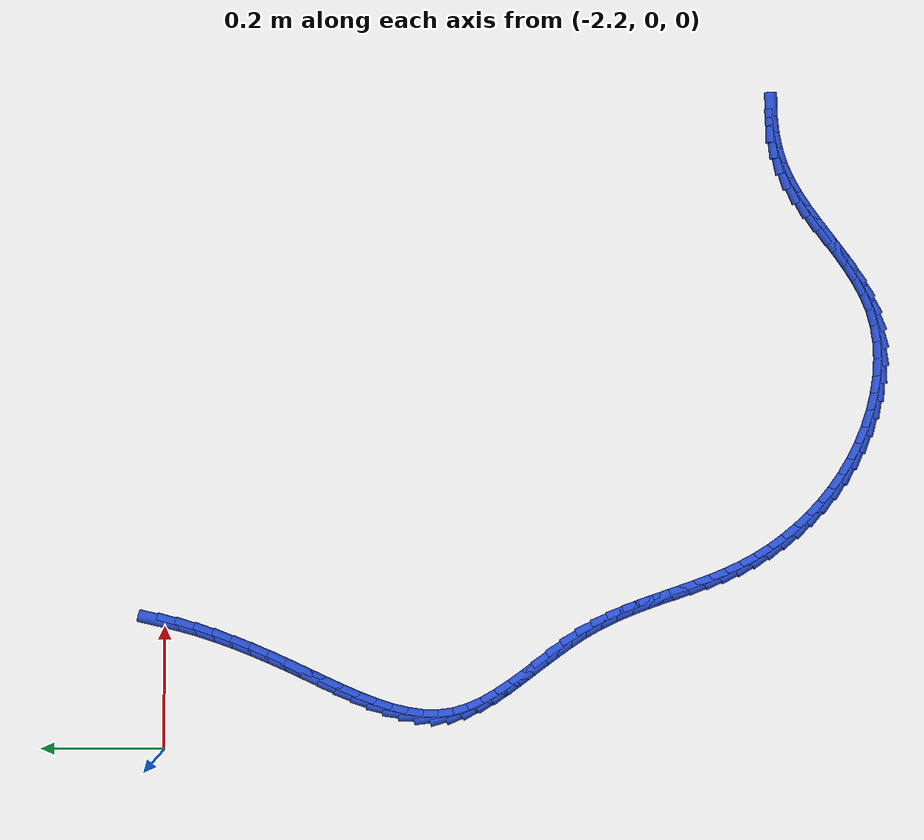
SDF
<sdf version="1.6">
 <world name="default">
  <model name="ground_plane">
   <static>1</static>
   <link name="link">
    <collision name="collision">
     <geometry><plane><normal>0 0 1</normal><size>100 100</size></plane></geometry>
     <surface><friction><ode><mu>100</mu><mu2>50</mu2></ode></friction></surface>
    </collision>
    <visual name="visual">
     <cast_shadows>0</cast_shadows>
     <geometry><plane><normal>0 0 1</normal><size>100 100</size></plane></geometry>
     <material>
      <script><uri>file://media/materials/scripts/gazebo.material</uri><name>Gazebo/WhiteGlow</name></script>
     </material>
    </visual>
   </link>
  </model>
  <model name="line">
   <link name="link_137">
    <pose>-1.9910492073272932 0.001707632671373513 0.01 0 1.57 1.3460165663858163</pose>
    <collision name="collision">
     <geometry><cylinder><radius>0.01</radius><length>0.08</length></cylinder></geometry>
    </collision>
    <visual name="visual">
     <material>
      <script><name>Gazebo/Blue</name><uri>file://media/materials/scripts/gazebo.material</uri></script>
     </material>
     <geometry><cylinder><radius>0.01</radius><length>0.08</length></cylinder></geometry>
    </visual>
   </link>
   <link name="link_138">
    <pose>-1.9976406174142094 -0.02712068325228265 0.01 0 1.57 1.2992451563873848</pose>
    <collision name="collision">
     <geometry><cylinder><radius>0.01</radius><length>0.08</length></cylinder></geometry>
    </collision>
    <visual name="visual">
     <material>
      <script><name>Gazebo/Blue</name><uri>file://media/materials/scripts/gazebo.material</uri></script>
     </material>
     <geometry><cylinder><radius>0.01</radius><length>0.08</length></cylinder></geometry>
    </visual>
   </link>
   <link name="link_139">
    <pose>-2.0057549440093454 -0.05626395263081665 0.01 0 1.57 1.2594805202922028</pose>
    <collision name="collision">
     <geometry><cylinder><radius>0.01</radius><length>0.08</length></cylinder></geometry>
    </collision>
    <visual name="visual">
     <material>
      <script><name>Gazebo/Blue</name><uri>file://media/materials/scripts/gazebo.material</uri></script>
     </material>
     <geometry><cylinder><radius>0.01</radius><length>0.08</length></cylinder></geometry>
    </visual>
   </link>
   <link name="link_140">
    <pose>-2.015196398217918 -0.08560538264032239 0.01 0 1.57 1.2258250034168063</pose>
    <collision name="collision">
     <geometry><cylinder><radius>0.01</radius><length>0.08</length></cylinder></geometry>
    </collision>
    <visual name="visual">
     <material>
      <script><name>Gazebo/Blue</name><uri>file://media/materials/scripts/gazebo.material</uri></script>
     </material>
     <geometry><cylinder><radius>0.01</radius><length>0.08</length></cylinder></geometry>
    </visual>
   </link>
   <link name="link_141">
    <pose>-2.025769191145145 -0.1150281804568939 0.01 0 1.57 1.1975449332592532</pose>
    <collision name="collision">
     <geometry><cylinder><radius>0.01</radius><length>0.08</length></cylinder></geometry>
    </collision>
    <visual name="visual">
     <material>
      <script><name>Gazebo/Blue</name><uri>file://media/materials/scripts/gazebo.material</uri></script>
     </material>
     <geometry><cylinder><radius>0.01</radius><length>0.08</length></cylinder></geometry>
    </visual>
   </link>
   <link name="link_142">
    <pose>-2.037277533896243 -0.14441555325662253 0.01 0 1.57 1.1740601900306746</pose>
    <collision name="collision">
     <geometry><cylinder><radius>0.01</radius><length>0.08</length></cylinder></geometry>
    </collision>
    <visual name="visual">
     <material>
      <script><name>Gazebo/Blue</name><uri>file://media/materials/scripts/gazebo.material</uri></script>
     </material>
     <geometry><cylinder><radius>0.01</radius><length>0.08</length></cylinder></geometry>
    </visual>
   </link>
   <link name="link_143">
    <pose>-2.0495256375764295 -0.1736507082156031 0.01 0 1.57 1.1549316646391445</pose>
    <collision name="collision">
     <geometry><cylinder><radius>0.01</radius><length>0.08</length></cylinder></geometry>
    </collision>
    <visual name="visual">
     <material>
      <script><name>Gazebo/Blue</name><uri>file://media/materials/scripts/gazebo.material</uri></script>
     </material>
     <geometry><cylinder><radius>0.01</radius><length>0.08</length></cylinder></geometry>
    </visual>
   </link>
   <link name="link_144">
    <pose>-2.0623177132909207 -0.20261685250992706 0.01 0 1.57 1.140403946616033</pose>
    <collision name="collision">
     <geometry><cylinder><radius>0.01</radius><length>0.08</length></cylinder></geometry>
    </collision>
    <visual name="visual">
     <material>
      <script><name>Gazebo/Blue</name><uri>file://media/materials/scripts/gazebo.material</uri></script>
     </material>
     <geometry><cylinder><radius>0.01</radius><length>0.08</length></cylinder></geometry>
    </visual>
   </link>
   <link name="link_145">
    <pose>-2.0754418590196364 -0.2312037823977666 0.01 0 1.57 1.1356188228291546</pose>
    <collision name="collision">
     <geometry><cylinder><radius>0.01</radius><length>0.08</length></cylinder></geometry>
    </collision>
    <visual name="visual">
     <material>
      <script><name>Gazebo/Blue</name><uri>file://media/materials/scripts/gazebo.material</uri></script>
     </material>
     <geometry><cylinder><radius>0.01</radius><length>0.08</length></cylinder></geometry>
    </visual>
   </link>
   <link name="link_146">
    <pose>-2.0885334892696417 -0.2593637304378773 0.01 0 1.57 1.1438557305493362</pose>
    <collision name="collision">
     <geometry><cylinder><radius>0.01</radius><length>0.08</length></cylinder></geometry>
    </collision>
    <visual name="visual">
     <material>
      <script><name>Gazebo/Blue</name><uri>file://media/materials/scripts/gazebo.material</uri></script>
     </material>
     <geometry><cylinder><radius>0.01</radius><length>0.08</length></cylinder></geometry>
    </visual>
   </link>
   <link name="link_147">
    <pose>-2.101143798731375 -0.28708336889416836 0.01 0 1.57 1.1660992037454772</pose>
    <collision name="collision">
     <geometry><cylinder><radius>0.01</radius><length>0.08</length></cylinder></geometry>
    </collision>
    <visual name="visual">
     <material>
      <script><name>Gazebo/Blue</name><uri>file://media/materials/scripts/gazebo.material</uri></script>
     </material>
     <geometry><cylinder><radius>0.01</radius><length>0.08</length></cylinder></geometry>
    </visual>
   </link>
   <link name="link_148">
    <pose>-2.112823100214544 -0.3143497306548437 0.01 0 1.57 1.2039193404138193</pose>
    <collision name="collision">
     <geometry><cylinder><radius>0.01</radius><length>0.08</length></cylinder></geometry>
    </collision>
    <visual name="visual">
     <material>
      <script><name>Gazebo/Blue</name><uri>file://media/materials/scripts/gazebo.material</uri></script>
     </material>
     <geometry><cylinder><radius>0.01</radius><length>0.08</length></cylinder></geometry>
    </visual>
   </link>
   <link name="link_149">
    <pose>-2.12312170652886 -0.34114984860811054 0.01 0 1.57 1.2595249183079558</pose>
    <collision name="collision">
     <geometry><cylinder><radius>0.01</radius><length>0.08</length></cylinder></geometry>
    </collision>
    <visual name="visual">
     <material>
      <script><name>Gazebo/Blue</name><uri>file://media/materials/scripts/gazebo.material</uri></script>
     </material>
     <geometry><cylinder><radius>0.01</radius><length>0.08</length></cylinder></geometry>
    </visual>
   </link>
   <link name="link_150">
    <pose>-2.131589930484031 -0.3674707556421727 0.01 0 1.57 1.335644572963151</pose>
    <collision name="collision">
     <geometry><cylinder><radius>0.01</radius><length>0.08</length></cylinder></geometry>
    </collision>
    <visual name="visual">
     <material>
      <script><name>Gazebo/Blue</name><uri>file://media/materials/scripts/gazebo.material</uri></script>
     </material>
     <geometry><cylinder><radius>0.01</radius><length>0.08</length></cylinder></geometry>
    </visual>
   </link>
   <link name="link_151">
    <pose>-2.1377780848897676 -0.3932994846452367 0.01 0 1.57 1.4350677348049512</pose>
    <collision name="collision">
     <geometry><cylinder><radius>0.01</radius><length>0.08</length></cylinder></geometry>
    </collision>
    <visual name="visual">
     <material>
      <script><name>Gazebo/Blue</name><uri>file://media/materials/scripts/gazebo.material</uri></script>
     </material>
     <geometry><cylinder><radius>0.01</radius><length>0.08</length></cylinder></geometry>
    </visual>
   </link>
   <link name="link_152">
    <pose>-2.1412364825557777 -0.4186230685055087 0.01 0 1.57 1.559551147422717</pose>
    <collision name="collision">
     <geometry><cylinder><radius>0.01</radius><length>0.08</length></cylinder></geometry>
    </collision>
    <visual name="visual">
     <material>
      <script><name>Gazebo/Blue</name><uri>file://media/materials/scripts/gazebo.material</uri></script>
     </material>
     <geometry><cylinder><radius>0.01</radius><length>0.08</length></cylinder></geometry>
    </visual>
   </link>
   <link name="link_153">
    <pose>-2.1415154362917717 -0.4434285401111927 0.01 0 1.57 -1.4336508128707455</pose>
    <collision name="collision">
     <geometry><cylinder><radius>0.01</radius><length>0.08</length></cylinder></geometry>
    </collision>
    <visual name="visual">
     <material>
      <script><name>Gazebo/Blue</name><uri>file://media/materials/scripts/gazebo.material</uri></script>
     </material>
     <geometry><cylinder><radius>0.01</radius><length>0.08</length></cylinder></geometry>
    </visual>
   </link>
   <link name="link_154">
    <pose>-2.1381652812880683 -0.46770293515979816 0.01 0 1.57 -1.2758770240311776</pose>
    <collision name="collision">
     <geometry><cylinder><radius>0.01</radius><length>0.08</length></cylinder></geometry>
    </collision>
    <visual name="visual">
     <material>
      <script><name>Gazebo/Blue</name><uri>file://media/materials/scripts/gazebo.material</uri></script>
     </material>
     <geometry><cylinder><radius>0.01</radius><length>0.08</length></cylinder></geometry>
    </visual>
   </link>
   <link name="link_155">
    <pose>-2.1309484330814725 -0.4914599105094461 0.01 0 1.57 -1.1449351415886124</pose>
    <collision name="collision">
     <geometry><cylinder><radius>0.01</radius><length>0.08</length></cylinder></geometry>
    </collision>
    <visual name="visual">
     <material>
      <script><name>Gazebo/Blue</name><uri>file://media/materials/scripts/gazebo.material</uri></script>
     </material>
     <geometry><cylinder><radius>0.01</radius><length>0.08</length></cylinder></geometry>
    </visual>
   </link>
   <link name="link_156">
    <pose>-2.120358641882172 -0.5148049230276712 0.01 0 1.57 -1.0472380654074145</pose>
    <collision name="collision">
     <geometry><cylinder><radius>0.01</radius><length>0.08</length></cylinder></geometry>
    </collision>
    <visual name="visual">
     <material>
      <script><name>Gazebo/Blue</name><uri>file://media/materials/scripts/gazebo.material</uri></script>
     </material>
     <geometry><cylinder><radius>0.01</radius><length>0.08</length></cylinder></geometry>
    </visual>
   </link>
   <link name="link_157">
    <pose>-2.107047183401426 -0.5378632028034962 0.01 0 1.57 -0.9792544555781986</pose>
    <collision name="collision">
     <geometry><cylinder><radius>0.01</radius><length>0.08</length></cylinder></geometry>
    </collision>
    <visual name="visual">
     <material>
      <script><name>Gazebo/Blue</name><uri>file://media/materials/scripts/gazebo.material</uri></script>
     </material>
     <geometry><cylinder><radius>0.01</radius><length>0.08</length></cylinder></geometry>
    </visual>
   </link>
   <link name="link_158">
    <pose>-2.0916653333504946 -0.5607599799259465 0.01 0 1.57 -0.9370072807147753</pose>
    <collision name="collision">
     <geometry><cylinder><radius>0.01</radius><length>0.08</length></cylinder></geometry>
    </collision>
    <visual name="visual">
     <material>
      <script><name>Gazebo/Blue</name><uri>file://media/materials/scripts/gazebo.material</uri></script>
     </material>
     <geometry><cylinder><radius>0.01</radius><length>0.08</length></cylinder></geometry>
    </visual>
   </link>
   <link name="link_159">
    <pose>-2.0748643674406373 -0.5836204844840452 0.01 0 1.57 -0.9174215191236696</pose>
    <collision name="collision">
     <geometry><cylinder><radius>0.01</radius><length>0.08</length></cylinder></geometry>
    </collision>
    <visual name="visual">
     <material>
      <script><name>Gazebo/Blue</name><uri>file://media/materials/scripts/gazebo.material</uri></script>
     </material>
     <geometry><cylinder><radius>0.01</radius><length>0.08</length></cylinder></geometry>
    </visual>
   </link>
   <link name="link_160">
    <pose>-2.057295561383113 -0.606569946566817 0.01 0 1.57 -0.9187131296818312</pose>
    <collision name="collision">
     <geometry><cylinder><radius>0.01</radius><length>0.08</length></cylinder></geometry>
    </collision>
    <visual name="visual">
     <material>
      <script><name>Gazebo/Blue</name><uri>file://media/materials/scripts/gazebo.material</uri></script>
     </material>
     <geometry><cylinder><radius>0.01</radius><length>0.08</length></cylinder></geometry>
    </visual>
   </link>
   <link name="link_161">
    <pose>-2.0396101908891806 -0.6297335962632864 0.01 0 1.57 -0.9404012299184373</pose>
    <collision name="collision">
     <geometry><cylinder><radius>0.01</radius><length>0.08</length></cylinder></geometry>
    </collision>
    <visual name="visual">
     <material>
      <script><name>Gazebo/Blue</name><uri>file://media/materials/scripts/gazebo.material</uri></script>
     </material>
     <geometry><cylinder><radius>0.01</radius><length>0.08</length></cylinder></geometry>
    </visual>
   </link>
   <link name="link_162">
    <pose>-2.0224595316701004 -0.6532366636624767 0.01 0 1.57 -0.9831925741344743</pose>
    <collision name="collision">
     <geometry><cylinder><radius>0.01</radius><length>0.08</length></cylinder></geometry>
    </collision>
    <visual name="visual">
     <material>
      <script><name>Gazebo/Blue</name><uri>file://media/materials/scripts/gazebo.material</uri></script>
     </material>
     <geometry><cylinder><radius>0.01</radius><length>0.08</length></cylinder></geometry>
    </visual>
   </link>
   <link name="link_163">
    <pose>-2.0064948594371304 -0.677204378853413 0.01 0 1.57 -1.0463529732244015</pose>
    <collision name="collision">
     <geometry><cylinder><radius>0.01</radius><length>0.08</length></cylinder></geometry>
    </collision>
    <visual name="visual">
     <material>
      <script><name>Gazebo/Blue</name><uri>file://media/materials/scripts/gazebo.material</uri></script>
     </material>
     <geometry><cylinder><radius>0.01</radius><length>0.08</length></cylinder></geometry>
    </visual>
   </link>
   <link name="link_164">
    <pose>-1.9922988467832232 -0.7017447055189716 0.01 0 1.57 -1.109429088060677</pose>
    <collision name="collision">
     <geometry><cylinder><radius>0.01</radius><length>0.08</length></cylinder></geometry>
    </collision>
    <visual name="visual">
     <material>
      <script><name>Gazebo/Blue</name><uri>file://media/materials/scripts/gazebo.material</uri></script>
     </material>
     <geometry><cylinder><radius>0.01</radius><length>0.08</length></cylinder></geometry>
    </visual>
   </link>
   <link name="link_165">
    <pose>-1.9798373812781482 -0.7268103715309208 0.01 0 1.57 -1.1601120024649205</pose>
    <collision name="collision">
     <geometry><cylinder><radius>0.01</radius><length>0.08</length></cylinder></geometry>
    </collision>
    <visual name="visual">
     <material>
      <script><name>Gazebo/Blue</name><uri>file://media/materials/scripts/gazebo.material</uri></script>
     </material>
     <geometry><cylinder><radius>0.01</radius><length>0.08</length></cylinder></geometry>
    </visual>
   </link>
   <link name="link_166">
    <pose>-1.9687502304496658 -0.7522720250941425 0.01 0 1.57 -1.1975143870101579</pose>
    <collision name="collision">
     <geometry><cylinder><radius>0.01</radius><length>0.08</length></cylinder></geometry>
    </collision>
    <visual name="visual">
     <material>
      <script><name>Gazebo/Blue</name><uri>file://media/materials/scripts/gazebo.material</uri></script>
     </material>
     <geometry><cylinder><radius>0.01</radius><length>0.08</length></cylinder></geometry>
    </visual>
   </link>
   <link name="link_167">
    <pose>-1.958674201025663 -0.7779995692232973 0.01 0 1.57 -1.2212315427142335</pose>
    <collision name="collision">
     <geometry><cylinder><radius>0.01</radius><length>0.08</length></cylinder></geometry>
    </collision>
    <visual name="visual">
     <material>
      <script><name>Gazebo/Blue</name><uri>file://media/materials/scripts/gazebo.material</uri></script>
     </material>
     <geometry><cylinder><radius>0.01</radius><length>0.08</length></cylinder></geometry>
    </visual>
   </link>
   <link name="link_168">
    <pose>-1.9492460997340255 -0.803862906933043 0.01 0 1.57 -1.2310528262577054</pose>
    <collision name="collision">
     <geometry><cylinder><radius>0.01</radius><length>0.08</length></cylinder></geometry>
    </collision>
    <visual name="visual">
     <material>
      <script><name>Gazebo/Blue</name><uri>file://media/materials/scripts/gazebo.material</uri></script>
     </material>
     <geometry><cylinder><radius>0.01</radius><length>0.08</length></cylinder></geometry>
    </visual>
   </link>
   <link name="link_169">
    <pose>-1.9401027333026402 -0.82973194123804 0.01 0 1.57 -1.2268318054656533</pose>
    <collision name="collision">
     <geometry><cylinder><radius>0.01</radius><length>0.08</length></cylinder></geometry>
    </collision>
    <visual name="visual">
     <material>
      <script><name>Gazebo/Blue</name><uri>file://media/materials/scripts/gazebo.material</uri></script>
     </material>
     <geometry><cylinder><radius>0.01</radius><length>0.08</length></cylinder></geometry>
    </visual>
   </link>
   <link name="link_170">
    <pose>-1.9308809084593939 -0.8554765751529461 0.01 0 1.57 -1.2084303041593263</pose>
    <collision name="collision">
     <geometry><cylinder><radius>0.01</radius><length>0.08</length></cylinder></geometry>
    </collision>
    <visual name="visual">
     <material>
      <script><name>Gazebo/Blue</name><uri>file://media/materials/scripts/gazebo.material</uri></script>
     </material>
     <geometry><cylinder><radius>0.01</radius><length>0.08</length></cylinder></geometry>
    </visual>
   </link>
   <link name="link_171">
    <pose>-1.9212174319321735 -0.8809667116924212 0.01 0 1.57 -1.1757446166263084</pose>
    <collision name="collision">
     <geometry><cylinder><radius>0.01</radius><length>0.08</length></cylinder></geometry>
    </collision>
    <visual name="visual">
     <material>
      <script><name>Gazebo/Blue</name><uri>file://media/materials/scripts/gazebo.material</uri></script>
     </material>
     <geometry><cylinder><radius>0.01</radius><length>0.08</length></cylinder></geometry>
    </visual>
   </link>
   <link name="link_172">
    <pose>-1.9107491104488652 -0.9060722538711253 0.01 0 1.57 -1.1288186797655506</pose>
    <collision name="collision">
     <geometry><cylinder><radius>0.01</radius><length>0.08</length></cylinder></geometry>
    </collision>
    <visual name="visual">
     <material>
      <script><name>Gazebo/Blue</name><uri>file://media/materials/scripts/gazebo.material</uri></script>
     </material>
     <geometry><cylinder><radius>0.01</radius><length>0.08</length></cylinder></geometry>
    </visual>
   </link>
   <link name="link_173">
    <pose>-1.899112750737356 -0.9306631047037162 0.01 0 1.57 -1.0688321477602594</pose>
    <collision name="collision">
     <geometry><cylinder><radius>0.01</radius><length>0.08</length></cylinder></geometry>
    </collision>
    <visual name="visual">
     <material>
      <script><name>Gazebo/Blue</name><uri>file://media/materials/scripts/gazebo.material</uri></script>
     </material>
     <geometry><cylinder><radius>0.01</radius><length>0.08</length></cylinder></geometry>
    </visual>
   </link>
   <link name="link_174">
    <pose>-1.8859695536765608 -0.954609652260181 0.01 0 1.57 -1.0042259697681994</pose>
    <collision name="collision">
     <geometry><cylinder><radius>0.01</radius><length>0.08</length></cylinder></geometry>
    </collision>
    <visual name="visual">
     <material>
      <script><name>Gazebo/Blue</name><uri>file://media/materials/scripts/gazebo.material</uri></script>
     </material>
     <geometry><cylinder><radius>0.01</radius><length>0.08</length></cylinder></geometry>
    </visual>
   </link>
   <link name="link_175">
    <pose>-1.8712254094315548 -0.977787150032613 0.01 0 1.57 -0.9393736085351392</pose>
    <collision name="collision">
     <geometry><cylinder><radius>0.01</radius><length>0.08</length></cylinder></geometry>
    </collision>
    <visual name="visual">
     <material>
      <script><name>Gazebo/Blue</name><uri>file://media/materials/scripts/gazebo.material</uri></script>
     </material>
     <geometry><cylinder><radius>0.01</radius><length>0.08</length></cylinder></geometry>
    </visual>
   </link>
   <link name="link_176">
    <pose>-1.8549273740562018 -1.000073658467376 0.01 0 1.57 -0.8739767641219839</pose>
    <collision name="collision">
     <geometry><cylinder><radius>0.01</radius><length>0.08</length></cylinder></geometry>
    </collision>
    <visual name="visual">
     <material>
      <script><name>Gazebo/Blue</name><uri>file://media/materials/scripts/gazebo.material</uri></script>
     </material>
     <geometry><cylinder><radius>0.01</radius><length>0.08</length></cylinder></geometry>
    </visual>
   </link>
   <link name="link_177">
    <pose>-1.8371242083563217 -1.0213472719082612 0.01 0 1.57 -0.8077120846091485</pose>
    <collision name="collision">
     <geometry><cylinder><radius>0.01</radius><length>0.08</length></cylinder></geometry>
    </collision>
    <visual name="visual">
     <material>
      <script><name>Gazebo/Blue</name><uri>file://media/materials/scripts/gazebo.material</uri></script>
     </material>
     <geometry><cylinder><radius>0.01</radius><length>0.08</length></cylinder></geometry>
    </visual>
   </link>
   <link name="link_178">
    <pose>-1.8178646731377333 -1.041486084699062 0.01 0 1.57 -0.7402942286457614</pose>
    <collision name="collision">
     <geometry><cylinder><radius>0.01</radius><length>0.08</length></cylinder></geometry>
    </collision>
    <visual name="visual">
     <material>
      <script><name>Gazebo/Blue</name><uri>file://media/materials/scripts/gazebo.material</uri></script>
     </material>
     <geometry><cylinder><radius>0.01</radius><length>0.08</length></cylinder></geometry>
    </visual>
   </link>
   <link name="link_179">
    <pose>-1.7971975292062567 -1.0603681911835694 0.01 0 1.57 -0.6714852530184786</pose>
    <collision name="collision">
     <geometry><cylinder><radius>0.01</radius><length>0.08</length></cylinder></geometry>
    </collision>
    <visual name="visual">
     <material>
      <script><name>Gazebo/Blue</name><uri>file://media/materials/scripts/gazebo.material</uri></script>
     </material>
     <geometry><cylinder><radius>0.01</radius><length>0.08</length></cylinder></geometry>
    </visual>
   </link>
   <link name="link_180">
    <pose>-1.7751715373677095 -1.0778716857055768 0.01 0 1.57 -0.6011056465441981</pose>
    <collision name="collision">
     <geometry><cylinder><radius>0.01</radius><length>0.08</length></cylinder></geometry>
    </collision>
    <visual name="visual">
     <material>
      <script><name>Gazebo/Blue</name><uri>file://media/materials/scripts/gazebo.material</uri></script>
     </material>
     <geometry><cylinder><radius>0.01</radius><length>0.08</length></cylinder></geometry>
    </visual>
   </link>
   <link name="link_181">
    <pose>-1.7518354584279139 -1.0938746626088758 0.01 0 1.57 -0.5290465933138976</pose>
    <collision name="collision">
     <geometry><cylinder><radius>0.01</radius><length>0.08</length></cylinder></geometry>
    </collision>
    <visual name="visual">
     <material>
      <script><name>Gazebo/Blue</name><uri>file://media/materials/scripts/gazebo.material</uri></script>
     </material>
     <geometry><cylinder><radius>0.01</radius><length>0.08</length></cylinder></geometry>
    </visual>
   </link>
   <link name="link_182">
    <pose>-1.727238053192687 -1.1082552162372585 0.01 0 1.57 -0.45536184222346493</pose>
    <collision name="collision">
     <geometry><cylinder><radius>0.01</radius><length>0.08</length></cylinder></geometry>
    </collision>
    <visual name="visual">
     <material>
      <script><name>Gazebo/Blue</name><uri>file://media/materials/scripts/gazebo.material</uri></script>
     </material>
     <geometry><cylinder><radius>0.01</radius><length>0.08</length></cylinder></geometry>
    </visual>
   </link>
   <link name="link_183">
    <pose>-1.7014387220086689 -1.1208887691615939 0.01 0 1.57 -0.3806612448487979</pose>
    <collision name="collision">
     <geometry><cylinder><radius>0.01</radius><length>0.08</length></cylinder></geometry>
    </collision>
    <visual name="visual">
     <material>
      <script><name>Gazebo/Blue</name><uri>file://media/materials/scripts/gazebo.material</uri></script>
     </material>
     <geometry><cylinder><radius>0.01</radius><length>0.08</length></cylinder></geometry>
    </visual>
   </link>
   <link name="link_184">
    <pose>-1.6746284090793757 -1.1316177110126016 0.01 0 1.57 -0.30413090446610597</pose>
    <collision name="collision">
     <geometry><cylinder><radius>0.01</radius><length>0.08</length></cylinder></geometry>
    </collision>
    <visual name="visual">
     <material>
      <script><name>Gazebo/Blue</name><uri>file://media/materials/scripts/gazebo.material</uri></script>
     </material>
     <geometry><cylinder><radius>0.01</radius><length>0.08</length></cylinder></geometry>
    </visual>
   </link>
   <link name="link_185">
    <pose>-1.6470868129461476 -1.1402621436699896 0.01 0 1.57 -0.22408455795829157</pose>
    <collision name="collision">
     <geometry><cylinder><radius>0.01</radius><length>0.08</length></cylinder></geometry>
    </collision>
    <visual name="visual">
     <material>
      <script><name>Gazebo/Blue</name><uri>file://media/materials/scripts/gazebo.material</uri></script>
     </material>
     <geometry><cylinder><radius>0.01</radius><length>0.08</length></cylinder></geometry>
    </visual>
   </link>
   <link name="link_186">
    <pose>-1.6190952962687803 -1.1466417511245075 0.01 0 1.57 -0.1388192453114445</pose>
    <collision name="collision">
     <geometry><cylinder><radius>0.01</radius><length>0.08</length></cylinder></geometry>
    </collision>
    <visual name="visual">
     <material>
      <script><name>Gazebo/Blue</name><uri>file://media/materials/scripts/gazebo.material</uri></script>
     </material>
     <geometry><cylinder><radius>0.01</radius><length>0.08</length></cylinder></geometry>
    </visual>
   </link>
   <link name="link_187">
    <pose>-1.5909352217070662 -1.150576217366905 0.01 0 1.57 -0.04663768807236608</pose>
    <collision name="collision">
     <geometry><cylinder><radius>0.01</radius><length>0.08</length></cylinder></geometry>
    </collision>
    <visual name="visual">
     <material>
      <script><name>Gazebo/Blue</name><uri>file://media/materials/scripts/gazebo.material</uri></script>
     </material>
     <geometry><cylinder><radius>0.01</radius><length>0.08</length></cylinder></geometry>
    </visual>
   </link>
   <link name="link_188">
    <pose>-1.5628879519208023 -1.1518852263879324 0.01 0 1.57 0.054073683246472354</pose>
    <collision name="collision">
     <geometry><cylinder><radius>0.01</radius><length>0.08</length></cylinder></geometry>
    </collision>
    <visual name="visual">
     <material>
      <script><name>Gazebo/Blue</name><uri>file://media/materials/scripts/gazebo.material</uri></script>
     </material>
     <geometry><cylinder><radius>0.01</radius><length>0.08</length></cylinder></geometry>
    </visual>
   </link>
   <link name="link_189">
    <pose>-1.5352348495697807 -1.1503884621783387 0.01 0 1.57 0.16466504422318406</pose>
    <collision name="collision">
     <geometry><cylinder><radius>0.01</radius><length>0.08</length></cylinder></geometry>
    </collision>
    <visual name="visual">
     <material>
      <script><name>Gazebo/Blue</name><uri>file://media/materials/scripts/gazebo.material</uri></script>
     </material>
     <geometry><cylinder><radius>0.01</radius><length>0.08</length></cylinder></geometry>
    </visual>
   </link>
   <link name="link_190">
    <pose>-1.5082572773137979 -1.1459056087288746 0.01 0 1.57 0.285901666566546</pose>
    <collision name="collision">
     <geometry><cylinder><radius>0.01</radius><length>0.08</length></cylinder></geometry>
    </collision>
    <visual name="visual">
     <material>
      <script><name>Gazebo/Blue</name><uri>file://media/materials/scripts/gazebo.material</uri></script>
     </material>
     <geometry><cylinder><radius>0.01</radius><length>0.08</length></cylinder></geometry>
    </visual>
   </link>
   <link name="link_191">
    <pose>-1.4822364191749866 -1.1382566493848654 0.01 0 1.57 0.40911787969497976</pose>
    <collision name="collision">
     <geometry><cylinder><radius>0.01</radius><length>0.08</length></cylinder></geometry>
    </collision>
    <visual name="visual">
     <material>
      <script><name>Gazebo/Blue</name><uri>file://media/materials/scripts/gazebo.material</uri></script>
     </material>
     <geometry><cylinder><radius>0.01</radius><length>0.08</length></cylinder></geometry>
    </visual>
   </link>
   <link name="link_192">
    <pose>-1.4573351213765071 -1.127459873725306 0.01 0 1.57 0.509781315482019</pose>
    <collision name="collision">
     <geometry><cylinder><radius>0.01</radius><length>0.08</length></cylinder></geometry>
    </collision>
    <visual name="visual">
     <material>
      <script><name>Gazebo/Blue</name><uri>file://media/materials/scripts/gazebo.material</uri></script>
     </material>
     <geometry><cylinder><radius>0.01</radius><length>0.08</length></cylinder></geometry>
    </visual>
   </link>
   <link name="link_193">
    <pose>-1.433393320479826 -1.1140746917436448 0.01 0 1.57 0.5837558613468902</pose>
    <collision name="collision">
     <geometry><cylinder><radius>0.01</radius><length>0.08</length></cylinder></geometry>
    </collision>
    <visual name="visual">
     <material>
      <script><name>Gazebo/Blue</name><uri>file://media/materials/scripts/gazebo.material</uri></script>
     </material>
     <geometry><cylinder><radius>0.01</radius><length>0.08</length></cylinder></geometry>
    </visual>
   </link>
   <link name="link_194">
    <pose>-1.4101963829172408 -1.098751960096015 0.01 0 1.57 0.6323807188574102</pose>
    <collision name="collision">
     <geometry><cylinder><radius>0.01</radius><length>0.08</length></cylinder></geometry>
    </collision>
    <visual name="visual">
     <material>
      <script><name>Gazebo/Blue</name><uri>file://media/materials/scripts/gazebo.material</uri></script>
     </material>
     <geometry><cylinder><radius>0.01</radius><length>0.08</length></cylinder></geometry>
    </visual>
   </link>
   <link name="link_195">
    <pose>-1.3875296751210526 -1.082142535438551 0.01 0 1.57 0.6571583729616522</pose>
    <collision name="collision">
     <geometry><cylinder><radius>0.01</radius><length>0.08</length></cylinder></geometry>
    </collision>
    <visual name="visual">
     <material>
      <script><name>Gazebo/Blue</name><uri>file://media/materials/scripts/gazebo.material</uri></script>
     </material>
     <geometry><cylinder><radius>0.01</radius><length>0.08</length></cylinder></geometry>
    </visual>
   </link>
   <link name="link_196">
    <pose>-1.3651785635235594 -1.064897274427387 0.01 0 1.57 0.6589273894693829</pose>
    <collision name="collision">
     <geometry><cylinder><radius>0.01</radius><length>0.08</length></cylinder></geometry>
    </collision>
    <visual name="visual">
     <material>
      <script><name>Gazebo/Blue</name><uri>file://media/materials/scripts/gazebo.material</uri></script>
     </material>
     <geometry><cylinder><radius>0.01</radius><length>0.08</length></cylinder></geometry>
    </visual>
   </link>
   <link name="link_197">
    <pose>-1.3429284145570621 -1.0476670337186575 0.01 0 1.57 0.6375075443902656</pose>
    <collision name="collision">
     <geometry><cylinder><radius>0.01</radius><length>0.08</length></cylinder></geometry>
    </collision>
    <visual name="visual">
     <material>
      <script><name>Gazebo/Blue</name><uri>file://media/materials/scripts/gazebo.material</uri></script>
     </material>
     <geometry><cylinder><radius>0.01</radius><length>0.08</length></cylinder></geometry>
    </visual>
   </link>
   <link name="link_198">
    <pose>-1.320564594653858 -1.0311026699684962 0.01 0 1.57 0.5916409728827392</pose>
    <collision name="collision">
     <geometry><cylinder><radius>0.01</radius><length>0.08</length></cylinder></geometry>
    </collision>
    <visual name="visual">
     <material>
      <script><name>Gazebo/Blue</name><uri>file://media/materials/scripts/gazebo.material</uri></script>
     </material>
     <geometry><cylinder><radius>0.01</radius><length>0.08</length></cylinder></geometry>
    </visual>
   </link>
   <link name="link_199">
    <pose>-1.2978724702462485 -1.0158550398330377 0.01 0 1.57 0.5192389424532526</pose>
    <collision name="collision">
     <geometry><cylinder><radius>0.01</radius><length>0.08</length></cylinder></geometry>
    </collision>
    <visual name="visual">
     <material>
      <script><name>Gazebo/Blue</name><uri>file://media/materials/scripts/gazebo.material</uri></script>
     </material>
     <geometry><cylinder><radius>0.01</radius><length>0.08</length></cylinder></geometry>
    </visual>
   </link>
   <link name="link_200">
    <pose>-1.274637407766531 -1.0025749999684157 0.01 0 1.57 0.42010802891191484</pose>
    <collision name="collision">
     <geometry><cylinder><radius>0.01</radius><length>0.08</length></cylinder></geometry>
    </collision>
    <visual name="visual">
     <material>
      <script><name>Gazebo/Blue</name><uri>file://media/materials/scripts/gazebo.material</uri></script>
     </material>
     <geometry><cylinder><radius>0.01</radius><length>0.08</length></cylinder></geometry>
    </visual>
   </link>
   <link name="link_201">
    <pose>-1.250661759972789 -0.9918650271426844 0.01 0 1.57 0.3134367312219856</pose>
    <collision name="collision">
     <geometry><cylinder><radius>0.01</radius><length>0.08</length></cylinder></geometry>
    </collision>
    <visual name="visual">
     <material>
      <script><name>Gazebo/Blue</name><uri>file://media/materials/scripts/gazebo.material</uri></script>
     </material>
     <geometry><cylinder><radius>0.01</radius><length>0.08</length></cylinder></geometry>
    </visual>
   </link>
   <link name="link_202">
    <pose>-1.2259173738676472 -0.983844850254448 0.01 0 1.57 0.2124366788030704</pose>
    <collision name="collision">
     <geometry><cylinder><radius>0.01</radius><length>0.08</length></cylinder></geometry>
    </collision>
    <visual name="visual">
     <material>
      <script><name>Gazebo/Blue</name><uri>file://media/materials/scripts/gazebo.material</uri></script>
     </material>
     <geometry><cylinder><radius>0.01</radius><length>0.08</length></cylinder></geometry>
    </visual>
   </link>
   <link name="link_203">
    <pose>-1.2004734819867464 -0.9783568279665076 0.01 0 1.57 0.1189773087025899</pose>
    <collision name="collision">
     <geometry><cylinder><radius>0.01</radius><length>0.08</length></cylinder></geometry>
    </collision>
    <visual name="visual">
     <material>
      <script><name>Gazebo/Blue</name><uri>file://media/materials/scripts/gazebo.material</uri></script>
     </material>
     <geometry><cylinder><radius>0.01</radius><length>0.08</length></cylinder></geometry>
    </visual>
   </link>
   <link name="link_204">
    <pose>-1.1744004781400608 -0.9752400114387257 0.01 0 1.57 0.034027453750946686</pose>
    <collision name="collision">
     <geometry><cylinder><radius>0.01</radius><length>0.08</length></cylinder></geometry>
    </collision>
    <visual name="visual">
     <material>
      <script><name>Gazebo/Blue</name><uri>file://media/materials/scripts/gazebo.material</uri></script>
     </material>
     <geometry><cylinder><radius>0.01</radius><length>0.08</length></cylinder></geometry>
    </visual>
   </link>
  </model>
 </world>
</sdf>
